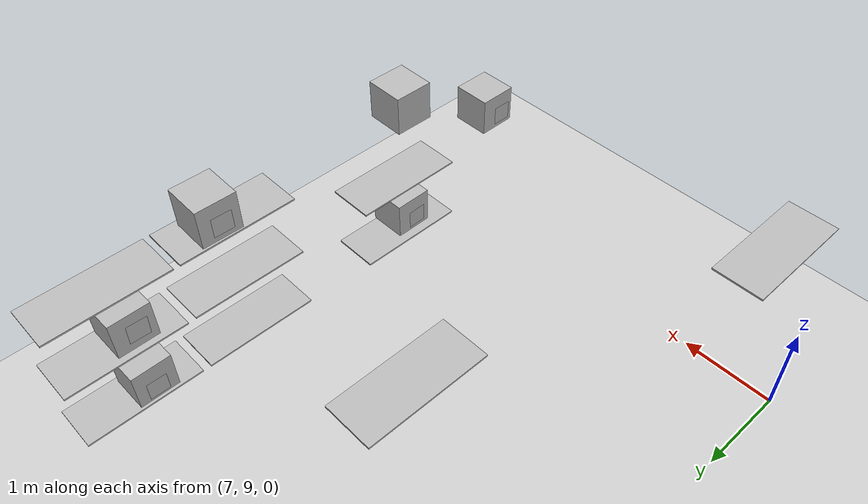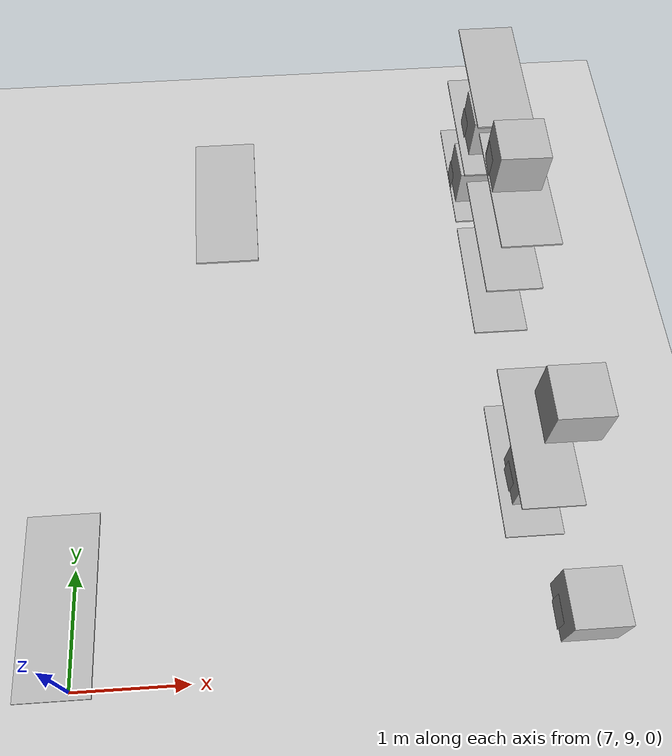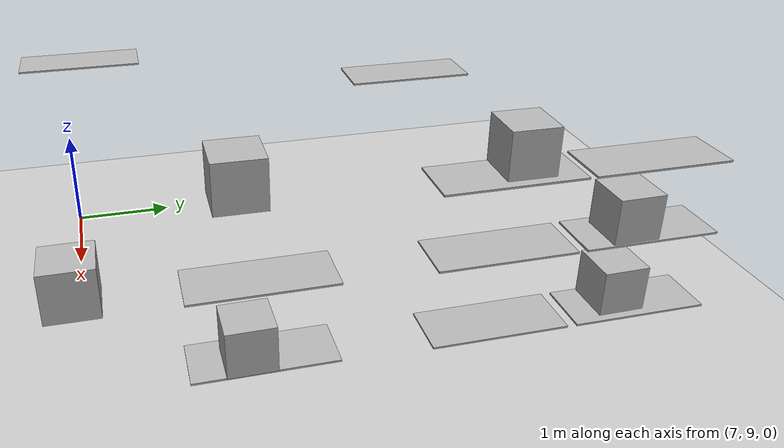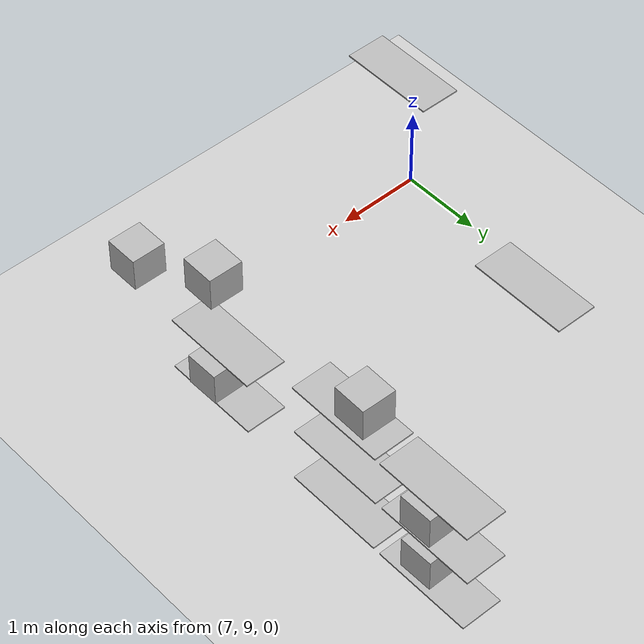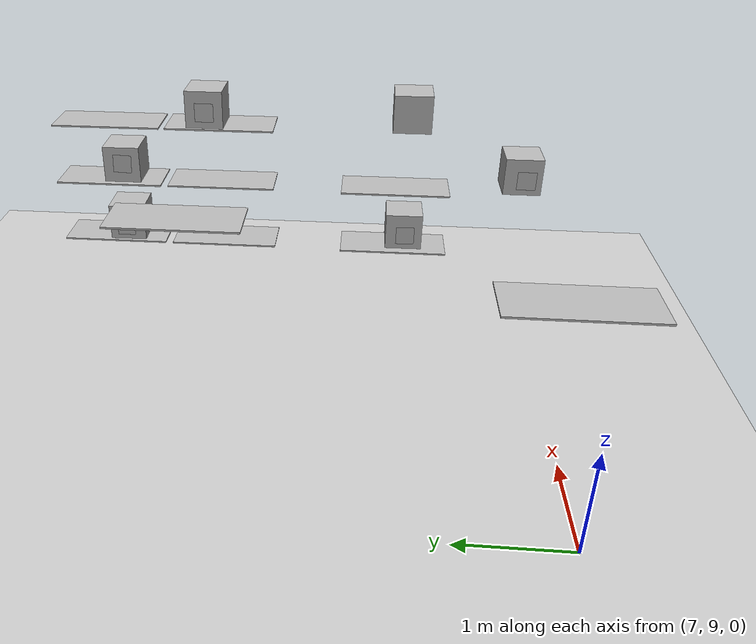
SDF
<sdf version="1.6">
 <world name="default">
  <model name="ground_plane">
   <static>1</static>
   <link name="link">
    <collision name="collision">
     <geometry><plane><normal>0 0 1</normal><size>300 300</size></plane></geometry>
     <surface>
      <contact><collide_bitmask>65535</collide_bitmask></contact>
      <friction><ode><mu>100</mu><mu2>50</mu2></ode></friction>
     </surface>
    </collision>
    <visual name="visual">
     <geometry><plane><normal>0 0 1</normal><size>100 100</size></plane></geometry>
     <material>
      <script><uri>file://media/materials/scripts/gazebo.material</uri><name>Gazebo/Grey</name></script>
     </material>
    </visual>
   </link>
  </model>
  <model name="Plano15">
   <link name="link">
    <gravity>0</gravity>
    <pose>0.092941 -0.00902 1.95167 0 -0 0</pose>
    <inertial>
     <mass>1e-06</mass>
     <inertia><ixx>0.00058</ixx><ixy>0</ixy><ixz>0</ixz><iyy>0.00058</iyy><iyz>0</iyz><izz>0.00019</izz></inertia>
    </inertial>
    <visual name="visual">
     <geometry><box><size>0.2 1e-06 0.2</size></box></geometry>
     <material>
      <script>
       <uri>model://Plano15/materials/scripts</uri>
       <uri>model://Plano15/materials/textures</uri>
       <name>Plano15/Diffuse</name>
      </script>
      <shader type="pixel"/>
     </material>
     <cast_shadows>0</cast_shadows>
    </visual>
    <collision name="collision">
     <geometry><box><size>0.2 1e-06 0.2</size></box></geometry>
     <surface>
      <friction>
       <ode><mu>1</mu><mu2>1</mu2><fdir1>0 0 0</fdir1><slip1>0</slip1><slip2>0</slip2></ode>
       <torsional>
        <coefficient>1</coefficient>
        <patch_radius>0</patch_radius>
        <surface_radius>0</surface_radius>
        <use_patch_radius>1</use_patch_radius>
        <ode><slip>0</slip></ode>
       </torsional>
      </friction>
      <bounce><restitution_coefficient>0</restitution_coefficient><threshold>1e+06</threshold></bounce>
      <contact>
       <collide_without_contact>0</collide_without_contact>
       <collide_without_contact_bitmask>1</collide_without_contact_bitmask>
       <collide_bitmask>1</collide_bitmask>
       <ode>
        <soft_cfm>0</soft_cfm>
        <soft_erp>0.2</soft_erp>
        <kp>1e+13</kp>
        <kd>1</kd>
        <max_vel>0.01</max_vel>
        <min_depth>0</min_depth>
       </ode>
       <bullet>
        <split_impulse>1</split_impulse>
        <split_impulse_penetration_threshold>-0.01</split_impulse_penetration_threshold>
        <soft_cfm>0</soft_cfm>
        <soft_erp>0.2</soft_erp>
        <kp>1e+13</kp>
        <kd>1</kd>
       </bullet>
      </contact>
     </surface>
    </collision>
   </link>
   <static>0</static>
   <pose>10.6606 12.5838 0.25794 0 0 -1.60068</pose>
  </model>
  <model name="Plano17">
   <link name="link">
    <gravity>0</gravity>
    <pose>0.529394 0.033885 0.692928 -0 0.041367 0.025601</pose>
    <inertial>
     <mass>1e-06</mass>
     <inertia><ixx>0.00058</ixx><ixy>0</ixy><ixz>0</ixz><iyy>0.00058</iyy><iyz>0</iyz><izz>0.00019</izz></inertia>
    </inertial>
    <visual name="visual">
     <geometry><box><size>0.2 1e-06 0.2</size></box></geometry>
     <material>
      <script>
       <uri>model://Plano17/materials/scripts</uri>
       <uri>model://Plano17/materials/textures</uri>
       <name>Plano17/Diffuse</name>
      </script>
      <shader type="pixel"/>
     </material>
     <cast_shadows>0</cast_shadows>
    </visual>
    <collision name="collision">
     <geometry><box><size>0.2 1e-06 0.2</size></box></geometry>
     <surface>
      <friction>
       <ode><mu>1</mu><mu2>1</mu2><fdir1>0 0 0</fdir1><slip1>0</slip1><slip2>0</slip2></ode>
       <torsional>
        <coefficient>1</coefficient>
        <patch_radius>0</patch_radius>
        <surface_radius>0</surface_radius>
        <use_patch_radius>1</use_patch_radius>
        <ode><slip>0</slip></ode>
       </torsional>
      </friction>
      <bounce><restitution_coefficient>0</restitution_coefficient><threshold>1e+06</threshold></bounce>
      <contact>
       <collide_without_contact>0</collide_without_contact>
       <collide_without_contact_bitmask>1</collide_without_contact_bitmask>
       <collide_bitmask>1</collide_bitmask>
       <ode>
        <soft_cfm>0</soft_cfm>
        <soft_erp>0.2</soft_erp>
        <kp>1e+13</kp>
        <kd>1</kd>
        <max_vel>0.01</max_vel>
        <min_depth>0</min_depth>
       </ode>
       <bullet>
        <split_impulse>1</split_impulse>
        <split_impulse_penetration_threshold>-0.01</split_impulse_penetration_threshold>
        <soft_cfm>0</soft_cfm>
        <soft_erp>0.2</soft_erp>
        <kp>1e+13</kp>
        <kd>1</kd>
       </bullet>
      </contact>
     </surface>
    </collision>
   </link>
   <static>0</static>
   <pose>10.6508 13.9613 0.903512 0 0 -1.5876</pose>
  </model>
  <model name="Plano14">
   <link name="link">
    <gravity>0</gravity>
    <pose>-0.817096 -0.102693 -0.058439 0.003356 0.001825 0.044055</pose>
    <inertial>
     <mass>1e-06</mass>
     <inertia><ixx>0.00058</ixx><ixy>0</ixy><ixz>0</ixz><iyy>0.00058</iyy><iyz>0</iyz><izz>0.00019</izz></inertia>
    </inertial>
    <visual name="visual">
     <geometry><box><size>0.2 1e-06 0.2</size></box></geometry>
     <material>
      <script>
       <uri>model://Plano14/materials/scripts</uri>
       <uri>model://Plano14/materials/textures</uri>
       <name>Plano14/Diffuse</name>
      </script>
      <shader type="pixel"/>
     </material>
     <cast_shadows>0</cast_shadows>
    </visual>
    <collision name="collision">
     <geometry><box><size>0.2 1e-06 0.2</size></box></geometry>
     <surface>
      <friction>
       <ode><mu>1</mu><mu2>1</mu2><fdir1>0 0 0</fdir1><slip1>0</slip1><slip2>0</slip2></ode>
       <torsional>
        <coefficient>1</coefficient>
        <patch_radius>0</patch_radius>
        <surface_radius>0</surface_radius>
        <use_patch_radius>1</use_patch_radius>
        <ode><slip>0</slip></ode>
       </torsional>
      </friction>
      <bounce><restitution_coefficient>0</restitution_coefficient><threshold>1e+06</threshold></bounce>
      <contact>
       <collide_without_contact>0</collide_without_contact>
       <collide_without_contact_bitmask>1</collide_without_contact_bitmask>
       <collide_bitmask>1</collide_bitmask>
       <ode>
        <soft_cfm>0</soft_cfm>
        <soft_erp>0.2</soft_erp>
        <kp>1e+13</kp>
        <kd>1</kd>
        <max_vel>0.01</max_vel>
        <min_depth>0</min_depth>
       </ode>
       <bullet>
        <split_impulse>1</split_impulse>
        <split_impulse_penetration_threshold>-0.01</split_impulse_penetration_threshold>
        <soft_cfm>0</soft_cfm>
        <soft_erp>0.2</soft_erp>
        <kp>1e+13</kp>
        <kd>1</kd>
       </bullet>
      </contact>
     </surface>
    </collision>
   </link>
   <static>0</static>
   <pose>10.7078 12.6284 0.90675 0 0 -1.62851</pose>
  </model>
  <model name="Plano29">
   <link name="link">
    <gravity>0</gravity>
    <pose>1.04341 -0.05608 -0.017058 0 -0 0</pose>
    <inertial>
     <mass>1e-06</mass>
     <inertia><ixx>0.00058</ixx><ixy>0</ixy><ixz>0</ixz><iyy>0.00058</iyy><iyz>0</iyz><izz>0.00019</izz></inertia>
    </inertial>
    <visual name="visual">
     <geometry><box><size>0.2 1e-06 0.2</size></box></geometry>
     <material>
      <script>
       <uri>model://Plano29/materials/scripts</uri>
       <uri>model://Plano29/materials/textures</uri>
       <name>Plano29/Diffuse</name>
      </script>
      <shader type="pixel"/>
     </material>
     <cast_shadows>0</cast_shadows>
    </visual>
    <collision name="collision">
     <geometry><box><size>0.2 1e-06 0.2</size></box></geometry>
     <surface>
      <friction>
       <ode><mu>1</mu><mu2>1</mu2><fdir1>0 0 0</fdir1><slip1>0</slip1><slip2>0</slip2></ode>
       <torsional>
        <coefficient>1</coefficient>
        <patch_radius>0</patch_radius>
        <surface_radius>0</surface_radius>
        <use_patch_radius>1</use_patch_radius>
        <ode><slip>0</slip></ode>
       </torsional>
      </friction>
      <bounce><restitution_coefficient>0</restitution_coefficient><threshold>1e+06</threshold></bounce>
      <contact>
       <collide_without_contact>0</collide_without_contact>
       <collide_without_contact_bitmask>1</collide_without_contact_bitmask>
       <collide_bitmask>1</collide_bitmask>
       <ode>
        <soft_cfm>0</soft_cfm>
        <soft_erp>0.2</soft_erp>
        <kp>1e+13</kp>
        <kd>1</kd>
        <max_vel>0.01</max_vel>
        <min_depth>0</min_depth>
       </ode>
       <bullet>
        <split_impulse>1</split_impulse>
        <split_impulse_penetration_threshold>-0.01</split_impulse_penetration_threshold>
        <soft_cfm>0</soft_cfm>
        <soft_erp>0.2</soft_erp>
        <kp>1e+13</kp>
        <kd>1</kd>
       </bullet>
      </contact>
     </surface>
    </collision>
   </link>
   <static>0</static>
   <pose>10.7522 10.1107 1.5598 0 0 -1.57894</pose>
  </model>
  <model name="Plano27">
   <link name="link">
    <gravity>0</gravity>
    <pose>0.469171 -0.023188 -0.057385 0 -0 0.032924</pose>
    <inertial>
     <mass>1e-06</mass>
     <inertia><ixx>0.00058</ixx><ixy>0</ixy><ixz>0</ixz><iyy>0.00058</iyy><iyz>0</iyz><izz>0.00019</izz></inertia>
    </inertial>
    <visual name="visual">
     <geometry><box><size>0.2 1e-06 0.2</size></box></geometry>
     <material>
      <script>
       <uri>model://Plano27/materials/scripts</uri>
       <uri>model://Plano27/materials/textures</uri>
       <name>Plano27/Diffuse</name>
      </script>
      <shader type="pixel"/>
     </material>
     <cast_shadows>0</cast_shadows>
    </visual>
    <collision name="collision">
     <geometry><box><size>0.2 1e-06 0.2</size></box></geometry>
     <surface>
      <friction>
       <ode><mu>1</mu><mu2>1</mu2><fdir1>0 0 0</fdir1><slip1>0</slip1><slip2>0</slip2></ode>
       <torsional>
        <coefficient>1</coefficient>
        <patch_radius>0</patch_radius>
        <surface_radius>0</surface_radius>
        <use_patch_radius>1</use_patch_radius>
        <ode><slip>0</slip></ode>
       </torsional>
      </friction>
      <bounce><restitution_coefficient>0</restitution_coefficient><threshold>1e+06</threshold></bounce>
      <contact>
       <collide_without_contact>0</collide_without_contact>
       <collide_without_contact_bitmask>1</collide_without_contact_bitmask>
       <collide_bitmask>1</collide_bitmask>
       <ode>
        <soft_cfm>0</soft_cfm>
        <soft_erp>0.2</soft_erp>
        <kp>1e+13</kp>
        <kd>1</kd>
        <max_vel>0.01</max_vel>
        <min_depth>0</min_depth>
       </ode>
       <bullet>
        <split_impulse>1</split_impulse>
        <split_impulse_penetration_threshold>-0.01</split_impulse_penetration_threshold>
        <soft_cfm>0</soft_cfm>
        <soft_erp>0.2</soft_erp>
        <kp>1e+13</kp>
        <kd>1</kd>
       </bullet>
      </contact>
     </surface>
    </collision>
   </link>
   <static>0</static>
   <pose>10.7156 10.7789 0.90002 0 0 -1.57306</pose>
  </model>
  <model name="unit_box_clone_3">
   <link name="link">
    <inertial>
     <mass>0.00922354</mass>
     <inertia>
      <ixx>0.00104733</ixx>
      <ixy>0</ixy>
      <ixz>0</ixz>
      <iyy>0.000178965</iyy>
      <iyz>0</iyz>
      <izz>0.00122588</izz>
     </inertia>
    </inertial>
    <pose>1.0387 1.15619 1.50314 -0 -0 -0</pose>
    <visual name="visual">
     <geometry><box><size>0.482252 1.16718 0.016436</size></box></geometry>
     <material>
      <script>
       <uri>model://unit_box/materials/scripts</uri>
       <uri>model://unit_box/materials/textures</uri>
       <name>shelveMat/Diffuse</name>
      </script>
      <shader type="pixel"/>
     </material>
    </visual>
    <collision name="collision">
     <geometry><box><size>0.482252 1.16718 0.016436</size></box></geometry>
     <surface>
      <friction>
       <ode><mu>1</mu><mu2>1</mu2><fdir1>0 0 0</fdir1><slip1>0</slip1><slip2>0</slip2></ode>
       <torsional>
        <coefficient>1</coefficient>
        <patch_radius>0</patch_radius>
        <surface_radius>0</surface_radius>
        <use_patch_radius>1</use_patch_radius>
        <ode><slip>0</slip></ode>
       </torsional>
      </friction>
      <bounce><restitution_coefficient>0</restitution_coefficient><threshold>1e+06</threshold></bounce>
      <contact>
       <collide_without_contact>0</collide_without_contact>
       <collide_without_contact_bitmask>1</collide_without_contact_bitmask>
       <collide_bitmask>1</collide_bitmask>
       <ode>
        <soft_cfm>0</soft_cfm>
        <soft_erp>0.2</soft_erp>
        <kp>1e+13</kp>
        <kd>1</kd>
        <max_vel>0.01</max_vel>
        <min_depth>0</min_depth>
       </ode>
       <bullet>
        <split_impulse>1</split_impulse>
        <split_impulse_penetration_threshold>-0.01</split_impulse_penetration_threshold>
        <soft_cfm>0</soft_cfm>
        <soft_erp>0.2</soft_erp>
        <kp>1e+13</kp>
        <kd>1</kd>
       </bullet>
      </contact>
     </surface>
    </collision>
   </link>
   <static>1</static>
   <pose>9.87058 12.426 0.509169 0 -1e-06 -0.002445</pose>
  </model>
  <model name="unit_box_clone_4">
   <link name="link">
    <inertial>
     <mass>0.00922354</mass>
     <inertia>
      <ixx>0.00104733</ixx>
      <ixy>0</ixy>
      <ixz>0</ixz>
      <iyy>0.000178965</iyy>
      <iyz>0</iyz>
      <izz>0.00122588</izz>
     </inertia>
    </inertial>
    <pose>1.0387 1.15619 1.50314 -0 -0 -0</pose>
    <visual name="visual">
     <geometry><box><size>0.482252 1.16718 0.016436</size></box></geometry>
     <material>
      <script>
       <uri>model://unit_box/materials/scripts</uri>
       <uri>model://unit_box/materials/textures</uri>
       <name>shelveMat/Diffuse</name>
      </script>
      <shader type="pixel"/>
     </material>
    </visual>
    <collision name="collision">
     <geometry><box><size>0.482252 1.16718 0.016436</size></box></geometry>
     <surface>
      <friction>
       <ode><mu>1</mu><mu2>1</mu2><fdir1>0 0 0</fdir1><slip1>0</slip1><slip2>0</slip2></ode>
       <torsional>
        <coefficient>1</coefficient>
        <patch_radius>0</patch_radius>
        <surface_radius>0</surface_radius>
        <use_patch_radius>1</use_patch_radius>
        <ode><slip>0</slip></ode>
       </torsional>
      </friction>
      <bounce><restitution_coefficient>0</restitution_coefficient><threshold>1e+06</threshold></bounce>
      <contact>
       <collide_without_contact>0</collide_without_contact>
       <collide_without_contact_bitmask>1</collide_without_contact_bitmask>
       <collide_bitmask>1</collide_bitmask>
       <ode>
        <soft_cfm>0</soft_cfm>
        <soft_erp>0.2</soft_erp>
        <kp>1e+13</kp>
        <kd>1</kd>
        <max_vel>0.01</max_vel>
        <min_depth>0</min_depth>
       </ode>
       <bullet>
        <split_impulse>1</split_impulse>
        <split_impulse_penetration_threshold>-0.01</split_impulse_penetration_threshold>
        <soft_cfm>0</soft_cfm>
        <soft_erp>0.2</soft_erp>
        <kp>1e+13</kp>
        <kd>1</kd>
       </bullet>
      </contact>
     </surface>
    </collision>
   </link>
   <static>1</static>
   <pose>7.48204 11.2062 0.509169 0 -1e-06 -0.002445</pose>
  </model>
  <model name="unit_box_clone_10_clone_1">
   <link name="link">
    <inertial>
     <mass>0.00922354</mass>
     <inertia>
      <ixx>0.00104733</ixx>
      <ixy>0</ixy>
      <ixz>0</ixz>
      <iyy>0.000178965</iyy>
      <iyz>0</iyz>
      <izz>0.00122588</izz>
     </inertia>
    </inertial>
    <pose>2.16821 0.157655 0.848426 -0 -0 -0</pose>
    <visual name="visual">
     <geometry><box><size>0.482252 1.16718 0.016436</size></box></geometry>
     <material>
      <script>
       <uri>model://unit_box/materials/scripts</uri>
       <uri>model://unit_box/materials/textures</uri>
       <name>shelveMat/Diffuse</name>
      </script>
      <shader type="pixel"/>
     </material>
    </visual>
    <collision name="collision">
     <geometry><box><size>0.482252 1.16718 0.016436</size></box></geometry>
     <surface>
      <friction>
       <ode><mu>1</mu><mu2>1</mu2><fdir1>0 0 0</fdir1><slip1>0</slip1><slip2>0</slip2></ode>
       <torsional>
        <coefficient>1</coefficient>
        <patch_radius>0</patch_radius>
        <surface_radius>0</surface_radius>
        <use_patch_radius>1</use_patch_radius>
        <ode><slip>0</slip></ode>
       </torsional>
      </friction>
      <bounce><restitution_coefficient>0</restitution_coefficient><threshold>1e+06</threshold></bounce>
      <contact>
       <collide_without_contact>0</collide_without_contact>
       <collide_without_contact_bitmask>1</collide_without_contact_bitmask>
       <collide_bitmask>1</collide_bitmask>
       <ode>
        <soft_cfm>0</soft_cfm>
        <soft_erp>0.2</soft_erp>
        <kp>1e+13</kp>
        <kd>1</kd>
        <max_vel>0.01</max_vel>
        <min_depth>0</min_depth>
       </ode>
       <bullet>
        <split_impulse>1</split_impulse>
        <split_impulse_penetration_threshold>-0.01</split_impulse_penetration_threshold>
        <soft_cfm>0</soft_cfm>
        <soft_erp>0.2</soft_erp>
        <kp>1e+13</kp>
        <kd>1</kd>
       </bullet>
      </contact>
     </surface>
    </collision>
   </link>
   <static>1</static>
   <pose>8.69361 10.2933 0.509172 0 -1e-06 -0.002445</pose>
  </model>
  <model name="unit_box_clone_10_clone_2">
   <link name="link">
    <inertial>
     <mass>0.00922354</mass>
     <inertia>
      <ixx>0.00104733</ixx>
      <ixy>0</ixy>
      <ixz>0</ixz>
      <iyy>0.000178965</iyy>
      <iyz>0</iyz>
      <izz>0.00122588</izz>
     </inertia>
    </inertial>
    <pose>2.16821 0.157655 0.848426 -0 -0 -0</pose>
    <visual name="visual">
     <geometry><box><size>0.482252 1.16718 0.016436</size></box></geometry>
     <material>
      <script>
       <uri>model://unit_box/materials/scripts</uri>
       <uri>model://unit_box/materials/textures</uri>
       <name>shelveMat/Diffuse</name>
      </script>
      <shader type="pixel"/>
     </material>
    </visual>
    <collision name="collision">
     <geometry><box><size>0.482252 1.16718 0.016436</size></box></geometry>
     <surface>
      <friction>
       <ode><mu>1</mu><mu2>1</mu2><fdir1>0 0 0</fdir1><slip1>0</slip1><slip2>0</slip2></ode>
       <torsional>
        <coefficient>1</coefficient>
        <patch_radius>0</patch_radius>
        <surface_radius>0</surface_radius>
        <use_patch_radius>1</use_patch_radius>
        <ode><slip>0</slip></ode>
       </torsional>
      </friction>
      <bounce><restitution_coefficient>0</restitution_coefficient><threshold>1e+06</threshold></bounce>
      <contact>
       <collide_without_contact>0</collide_without_contact>
       <collide_without_contact_bitmask>1</collide_without_contact_bitmask>
       <collide_bitmask>1</collide_bitmask>
       <ode>
        <soft_cfm>0</soft_cfm>
        <soft_erp>0.2</soft_erp>
        <kp>1e+13</kp>
        <kd>1</kd>
        <max_vel>0.01</max_vel>
        <min_depth>0</min_depth>
       </ode>
       <bullet>
        <split_impulse>1</split_impulse>
        <split_impulse_penetration_threshold>-0.01</split_impulse_penetration_threshold>
        <soft_cfm>0</soft_cfm>
        <soft_erp>0.2</soft_erp>
        <kp>1e+13</kp>
        <kd>1</kd>
       </bullet>
      </contact>
     </surface>
    </collision>
   </link>
   <static>1</static>
   <pose>8.73071 12.2024 0.509172 0 -1e-06 -0.002445</pose>
  </model>
  <model name="unit_box_clone_3_clone">
   <link name="link">
    <inertial>
     <mass>0.00922354</mass>
     <inertia>
      <ixx>0.00104733</ixx>
      <ixy>0</ixy>
      <ixz>0</ixz>
      <iyy>0.000178965</iyy>
      <iyz>0</iyz>
      <izz>0.00122588</izz>
     </inertia>
    </inertial>
    <pose>1.0387 1.15619 1.50314 -0 -0 -0</pose>
    <visual name="visual">
     <geometry><box><size>0.482252 1.16718 0.016436</size></box></geometry>
     <material>
      <script>
       <uri>model://unit_box/materials/scripts</uri>
       <uri>model://unit_box/materials/textures</uri>
       <name>shelveMat/Diffuse</name>
      </script>
      <shader type="pixel"/>
     </material>
    </visual>
    <collision name="collision">
     <geometry><box><size>0.482252 1.16718 0.016436</size></box></geometry>
     <surface>
      <friction>
       <ode><mu>1</mu><mu2>1</mu2><fdir1>0 0 0</fdir1><slip1>0</slip1><slip2>0</slip2></ode>
       <torsional>
        <coefficient>1</coefficient>
        <patch_radius>0</patch_radius>
        <surface_radius>0</surface_radius>
        <use_patch_radius>1</use_patch_radius>
        <ode><slip>0</slip></ode>
       </torsional>
      </friction>
      <bounce><restitution_coefficient>0</restitution_coefficient><threshold>1e+06</threshold></bounce>
      <contact>
       <collide_without_contact>0</collide_without_contact>
       <collide_without_contact_bitmask>1</collide_without_contact_bitmask>
       <collide_bitmask>1</collide_bitmask>
       <ode>
        <soft_cfm>0</soft_cfm>
        <soft_erp>0.2</soft_erp>
        <kp>1e+13</kp>
        <kd>1</kd>
        <max_vel>0.01</max_vel>
        <min_depth>0</min_depth>
       </ode>
       <bullet>
        <split_impulse>1</split_impulse>
        <split_impulse_penetration_threshold>-0.01</split_impulse_penetration_threshold>
        <soft_cfm>0</soft_cfm>
        <soft_erp>0.2</soft_erp>
        <kp>1e+13</kp>
        <kd>1</kd>
       </bullet>
      </contact>
     </surface>
    </collision>
   </link>
   <static>1</static>
   <pose>9.86678 11.1965 0.509169 0 -1e-06 -0.002445</pose>
  </model>
  <model name="CuboQR17">
   <link name="link">
    <pose>1.43171 2.05866 0.02147 1e-06 0.159589 -0</pose>
    <inertial>
     <mass>0.39</mass>
     <inertia><ixx>0.00058</ixx><ixy>0</ixy><ixz>0</ixz><iyy>0.00058</iyy><iyz>0</iyz><izz>0.00019</izz></inertia>
    </inertial>
    <visual name="visual">
     <geometry><box><size>0.4 0.4 0.4</size></box></geometry>
     <material>
      <script>
       <uri>model://Caja/materials/scripts</uri>
       <uri>model://Caja/materials/textures</uri>
       <name>Caja/Diffuse</name>
      </script>
      <shader type="pixel"/>
     </material>
    </visual>
    <collision name="collision">
     <geometry><box><size>0.4 0.4 0.4</size></box></geometry>
     <surface>
      <friction>
       <ode><mu>1</mu><mu2>1</mu2><fdir1>0 0 0</fdir1><slip1>0</slip1><slip2>0</slip2></ode>
       <torsional>
        <coefficient>1</coefficient>
        <patch_radius>0</patch_radius>
        <surface_radius>0</surface_radius>
        <use_patch_radius>1</use_patch_radius>
        <ode><slip>0</slip></ode>
       </torsional>
      </friction>
      <bounce><restitution_coefficient>0</restitution_coefficient><threshold>1e+06</threshold></bounce>
      <contact>
       <collide_without_contact>0</collide_without_contact>
       <collide_without_contact_bitmask>1</collide_without_contact_bitmask>
       <collide_bitmask>1</collide_bitmask>
       <ode>
        <soft_cfm>0</soft_cfm>
        <soft_erp>0.2</soft_erp>
        <kp>1e+13</kp>
        <kd>1</kd>
        <max_vel>0.01</max_vel>
        <min_depth>0</min_depth>
       </ode>
       <bullet>
        <split_impulse>1</split_impulse>
        <split_impulse_penetration_threshold>-0.01</split_impulse_penetration_threshold>
        <soft_cfm>0</soft_cfm>
        <soft_erp>0.2</soft_erp>
        <kp>1e+13</kp>
        <kd>1</kd>
       </bullet>
      </contact>
     </surface>
    </collision>
   </link>
   <static>1</static>
   <pose>11.1525 13.9015 0.16934 1.5708 1.4e-05 -1.7472</pose>
  </model>
  <model name="unit_box_clone_10_clone_2_clone">
   <link name="link">
    <inertial>
     <mass>0.00922354</mass>
     <inertia>
      <ixx>0.00104733</ixx>
      <ixy>0</ixy>
      <ixz>0</ixz>
      <iyy>0.000178965</iyy>
      <iyz>0</iyz>
      <izz>0.00122588</izz>
     </inertia>
    </inertial>
    <pose>2.16821 0.157655 0.848426 -0 -0 -0</pose>
    <visual name="visual">
     <geometry><box><size>0.482252 1.16718 0.016436</size></box></geometry>
     <material>
      <script>
       <uri>model://unit_box/materials/scripts</uri>
       <uri>model://unit_box/materials/textures</uri>
       <name>shelveMat/Diffuse</name>
      </script>
      <shader type="pixel"/>
     </material>
    </visual>
    <collision name="collision">
     <geometry><box><size>0.482252 1.16718 0.016436</size></box></geometry>
     <surface>
      <friction>
       <ode><mu>1</mu><mu2>1</mu2><fdir1>0 0 0</fdir1><slip1>0</slip1><slip2>0</slip2></ode>
       <torsional>
        <coefficient>1</coefficient>
        <patch_radius>0</patch_radius>
        <surface_radius>0</surface_radius>
        <use_patch_radius>1</use_patch_radius>
        <ode><slip>0</slip></ode>
       </torsional>
      </friction>
      <bounce><restitution_coefficient>0</restitution_coefficient><threshold>1e+06</threshold></bounce>
      <contact>
       <collide_without_contact>0</collide_without_contact>
       <collide_without_contact_bitmask>1</collide_without_contact_bitmask>
       <collide_bitmask>1</collide_bitmask>
       <ode>
        <soft_cfm>0</soft_cfm>
        <soft_erp>0.2</soft_erp>
        <kp>1e+13</kp>
        <kd>1</kd>
        <max_vel>0.01</max_vel>
        <min_depth>0</min_depth>
       </ode>
       <bullet>
        <split_impulse>1</split_impulse>
        <split_impulse_penetration_threshold>-0.01</split_impulse_penetration_threshold>
        <soft_cfm>0</soft_cfm>
        <soft_erp>0.2</soft_erp>
        <kp>1e+13</kp>
        <kd>1</kd>
       </bullet>
      </contact>
     </surface>
    </collision>
   </link>
   <static>1</static>
   <pose>8.72771 13.4487 0.509172 0 -1e-06 -0.002445</pose>
  </model>
  <model name="CuboQR14">
   <link name="link">
    <pose>0.00391 0.820437 1.62046 0.003858 -4.2e-05 0.048672</pose>
    <inertial>
     <mass>0.39</mass>
     <inertia><ixx>0.00058</ixx><ixy>0</ixy><ixz>0</ixz><iyy>0.00058</iyy><iyz>0</iyz><izz>0.00019</izz></inertia>
    </inertial>
    <visual name="visual">
     <geometry><box><size>0.4 0.4 0.4</size></box></geometry>
     <material>
      <script>
       <uri>model://Caja/materials/scripts</uri>
       <uri>model://Caja/materials/textures</uri>
       <name>Caja/Diffuse</name>
      </script>
      <shader type="pixel"/>
     </material>
    </visual>
    <collision name="collision">
     <geometry><box><size>0.4 0.4 0.4</size></box></geometry>
     <surface>
      <friction>
       <ode><mu>1</mu><mu2>1</mu2><fdir1>0 0 0</fdir1><slip1>0</slip1><slip2>0</slip2></ode>
       <torsional>
        <coefficient>1</coefficient>
        <patch_radius>0</patch_radius>
        <surface_radius>0</surface_radius>
        <use_patch_radius>1</use_patch_radius>
        <ode><slip>0</slip></ode>
       </torsional>
      </friction>
      <bounce><restitution_coefficient>0</restitution_coefficient><threshold>1e+06</threshold></bounce>
      <contact>
       <collide_without_contact>0</collide_without_contact>
       <collide_without_contact_bitmask>1</collide_without_contact_bitmask>
       <collide_bitmask>1</collide_bitmask>
       <ode>
        <soft_cfm>0</soft_cfm>
        <soft_erp>0.2</soft_erp>
        <kp>1e+13</kp>
        <kd>1</kd>
        <max_vel>0.01</max_vel>
        <min_depth>0</min_depth>
       </ode>
       <bullet>
        <split_impulse>1</split_impulse>
        <split_impulse_penetration_threshold>-0.01</split_impulse_penetration_threshold>
        <soft_cfm>0</soft_cfm>
        <soft_erp>0.2</soft_erp>
        <kp>1e+13</kp>
        <kd>1</kd>
       </bullet>
      </contact>
     </surface>
    </collision>
   </link>
   <static>1</static>
   <pose>10.8847 12.6281 -0.053183 -0.003858 -0.000151 -0.041812</pose>
  </model>
  <model name="unit_box_clone_10_clone_clone_clone_clone_clone_0">
   <link name="link">
    <inertial>
     <mass>0.00922354</mass>
     <inertia>
      <ixx>0.00104733</ixx>
      <ixy>0</ixy>
      <ixz>0</ixz>
      <iyy>0.000178965</iyy>
      <iyz>0</iyz>
      <izz>0.00122588</izz>
     </inertia>
    </inertial>
    <pose>0.807225 -0.395541 0.148735 -0 -0 -0</pose>
    <visual name="visual">
     <geometry><box><size>0.482252 1.16718 0.016436</size></box></geometry>
     <material>
      <script>
       <uri>model://unit_box/materials/scripts</uri>
       <uri>model://unit_box/materials/textures</uri>
       <name>shelveMat/Diffuse</name>
      </script>
      <shader type="pixel"/>
     </material>
    </visual>
    <collision name="collision">
     <geometry><box><size>0.482252 1.16718 0.016436</size></box></geometry>
     <surface>
      <friction>
       <ode><mu>1</mu><mu2>1</mu2><fdir1>0 0 0</fdir1><slip1>0</slip1><slip2>0</slip2></ode>
       <torsional>
        <coefficient>1</coefficient>
        <patch_radius>0</patch_radius>
        <surface_radius>0</surface_radius>
        <use_patch_radius>1</use_patch_radius>
        <ode><slip>0</slip></ode>
       </torsional>
      </friction>
      <bounce><restitution_coefficient>0</restitution_coefficient><threshold>1e+06</threshold></bounce>
      <contact>
       <collide_without_contact>0</collide_without_contact>
       <collide_without_contact_bitmask>1</collide_without_contact_bitmask>
       <collide_bitmask>1</collide_bitmask>
       <ode>
        <soft_cfm>0</soft_cfm>
        <soft_erp>0.2</soft_erp>
        <kp>1e+13</kp>
        <kd>1</kd>
        <max_vel>0.01</max_vel>
        <min_depth>0</min_depth>
       </ode>
       <bullet>
        <split_impulse>1</split_impulse>
        <split_impulse_penetration_threshold>-0.01</split_impulse_penetration_threshold>
        <soft_cfm>0</soft_cfm>
        <soft_erp>0.2</soft_erp>
        <kp>1e+13</kp>
        <kd>1</kd>
       </bullet>
      </contact>
     </surface>
    </collision>
   </link>
   <static>1</static>
   <pose>10.0998 12.7434 0.509169 0 -1e-06 -0.002445</pose>
  </model>
  <model name="unit_box_clone_10_clone_clone_clone_clone_clone_0_clone">
   <link name="link">
    <inertial>
     <mass>0.00922354</mass>
     <inertia>
      <ixx>0.00104733</ixx>
      <ixy>0</ixy>
      <ixz>0</ixz>
      <iyy>0.000178965</iyy>
      <iyz>0</iyz>
      <izz>0.00122588</izz>
     </inertia>
    </inertial>
    <pose>0.807225 -0.395541 0.148735 -0 -0 -0</pose>
    <visual name="visual">
     <geometry><box><size>0.482252 1.16718 0.016436</size></box></geometry>
     <material>
      <script>
       <uri>model://unit_box/materials/scripts</uri>
       <uri>model://unit_box/materials/textures</uri>
       <name>shelveMat/Diffuse</name>
      </script>
      <shader type="pixel"/>
     </material>
    </visual>
    <collision name="collision">
     <geometry><box><size>0.482252 1.16718 0.016436</size></box></geometry>
     <surface>
      <friction>
       <ode><mu>1</mu><mu2>1</mu2><fdir1>0 0 0</fdir1><slip1>0</slip1><slip2>0</slip2></ode>
       <torsional>
        <coefficient>1</coefficient>
        <patch_radius>0</patch_radius>
        <surface_radius>0</surface_radius>
        <use_patch_radius>1</use_patch_radius>
        <ode><slip>0</slip></ode>
       </torsional>
      </friction>
      <bounce><restitution_coefficient>0</restitution_coefficient><threshold>1e+06</threshold></bounce>
      <contact>
       <collide_without_contact>0</collide_without_contact>
       <collide_without_contact_bitmask>1</collide_without_contact_bitmask>
       <collide_bitmask>1</collide_bitmask>
       <ode>
        <soft_cfm>0</soft_cfm>
        <soft_erp>0.2</soft_erp>
        <kp>1e+13</kp>
        <kd>1</kd>
        <max_vel>0.01</max_vel>
        <min_depth>0</min_depth>
       </ode>
       <bullet>
        <split_impulse>1</split_impulse>
        <split_impulse_penetration_threshold>-0.01</split_impulse_penetration_threshold>
        <soft_cfm>0</soft_cfm>
        <soft_erp>0.2</soft_erp>
        <kp>1e+13</kp>
        <kd>1</kd>
       </bullet>
      </contact>
     </surface>
    </collision>
   </link>
   <static>1</static>
   <pose>10.1047 13.995 0.509169 0 -1e-06 -0.002445</pose>
  </model>
  <model name="CuboQR15">
   <link name="link">
    <pose>0.015491 0.864269 0.937836 0 -0 0.05003</pose>
    <inertial>
     <mass>0.39</mass>
     <inertia><ixx>0.00058</ixx><ixy>0</ixy><ixz>0</ixz><iyy>0.00058</iyy><iyz>0</iyz><izz>0.00019</izz></inertia>
    </inertial>
    <visual name="visual">
     <geometry><box><size>0.4 0.4 0.4</size></box></geometry>
     <material>
      <script>
       <uri>model://Caja/materials/scripts</uri>
       <uri>model://Caja/materials/textures</uri>
       <name>Caja/Diffuse</name>
      </script>
      <shader type="pixel"/>
     </material>
    </visual>
    <collision name="collision">
     <geometry><box><size>0.4 0.4 0.4</size></box></geometry>
     <surface>
      <friction>
       <ode><mu>1</mu><mu2>1</mu2><fdir1>0 0 0</fdir1><slip1>0</slip1><slip2>0</slip2></ode>
       <torsional>
        <coefficient>1</coefficient>
        <patch_radius>0</patch_radius>
        <surface_radius>0</surface_radius>
        <use_patch_radius>1</use_patch_radius>
        <ode><slip>0</slip></ode>
       </torsional>
      </friction>
      <bounce><restitution_coefficient>0</restitution_coefficient><threshold>1e+06</threshold></bounce>
      <contact>
       <collide_without_contact>0</collide_without_contact>
       <collide_without_contact_bitmask>1</collide_without_contact_bitmask>
       <collide_bitmask>1</collide_bitmask>
       <ode>
        <soft_cfm>0</soft_cfm>
        <soft_erp>0.2</soft_erp>
        <kp>1e+13</kp>
        <kd>1</kd>
        <max_vel>0.01</max_vel>
        <min_depth>0</min_depth>
       </ode>
       <bullet>
        <split_impulse>1</split_impulse>
        <split_impulse_penetration_threshold>-0.01</split_impulse_penetration_threshold>
        <soft_cfm>0</soft_cfm>
        <soft_erp>0.2</soft_erp>
        <kp>1e+13</kp>
        <kd>1</kd>
       </bullet>
      </contact>
     </surface>
    </collision>
   </link>
   <static>1</static>
   <pose>10.8433 12.5845 -0.062012 6.5e-05 1e-06 -0.039159</pose>
  </model>
  <model name="unit_box_clone_10_clone_clone_clone_clone_clone_0_clone_0_clone">
   <link name="link">
    <inertial>
     <mass>0.00922354</mass>
     <inertia>
      <ixx>0.00104733</ixx>
      <ixy>0</ixy>
      <ixz>0</ixz>
      <iyy>0.000178965</iyy>
      <iyz>0</iyz>
      <izz>0.00122588</izz>
     </inertia>
    </inertial>
    <pose>0.778375 -0.419803 0.148735 -0 -0 -0</pose>
    <visual name="visual">
     <geometry><box><size>0.482252 1.16718 0.016436</size></box></geometry>
     <material>
      <script>
       <uri>model://unit_box/materials/scripts</uri>
       <uri>model://unit_box/materials/textures</uri>
       <name>shelveMat/Diffuse</name>
      </script>
      <shader type="pixel"/>
     </material>
    </visual>
    <collision name="collision">
     <geometry><box><size>0.482252 1.16718 0.016436</size></box></geometry>
     <surface>
      <friction>
       <ode><mu>1</mu><mu2>1</mu2><fdir1>0 0 0</fdir1><slip1>0</slip1><slip2>0</slip2></ode>
       <torsional>
        <coefficient>1</coefficient>
        <patch_radius>0</patch_radius>
        <surface_radius>0</surface_radius>
        <use_patch_radius>1</use_patch_radius>
        <ode><slip>0</slip></ode>
       </torsional>
      </friction>
      <bounce><restitution_coefficient>0</restitution_coefficient><threshold>1e+06</threshold></bounce>
      <contact>
       <collide_without_contact>0</collide_without_contact>
       <collide_without_contact_bitmask>1</collide_without_contact_bitmask>
       <collide_bitmask>1</collide_bitmask>
       <ode>
        <soft_cfm>0</soft_cfm>
        <soft_erp>0.2</soft_erp>
        <kp>1e+13</kp>
        <kd>1</kd>
        <max_vel>0.01</max_vel>
        <min_depth>0</min_depth>
       </ode>
       <bullet>
        <split_impulse>1</split_impulse>
        <split_impulse_penetration_threshold>-0.01</split_impulse_penetration_threshold>
        <soft_cfm>0</soft_cfm>
        <soft_erp>0.2</soft_erp>
        <kp>1e+13</kp>
        <kd>1</kd>
       </bullet>
      </contact>
     </surface>
    </collision>
   </link>
   <static>1</static>
   <pose>10.0905 10.8609 0.509169 0 -1e-06 -0.002445</pose>
  </model>
  <model name="CuboQR29">
   <link name="link">
    <pose>0.708363 0.614281 1.22447 0.741446 -0.083036 -0.038114</pose>
    <inertial>
     <mass>0.39</mass>
     <inertia><ixx>0.00058</ixx><ixy>0</ixy><ixz>0</ixz><iyy>0.00058</iyy><iyz>0</iyz><izz>0.00019</izz></inertia>
    </inertial>
    <visual name="visual">
     <geometry><box><size>0.4 0.4 0.4</size></box></geometry>
     <material>
      <script>
       <uri>model://Caja/materials/scripts</uri>
       <uri>model://Caja/materials/textures</uri>
       <name>Caja/Diffuse</name>
      </script>
      <shader type="pixel"/>
     </material>
    </visual>
    <collision name="collision">
     <geometry><box><size>0.4 0.4 0.4</size></box></geometry>
     <surface>
      <friction>
       <ode><mu>1</mu><mu2>1</mu2><fdir1>0 0 0</fdir1><slip1>0</slip1><slip2>0</slip2></ode>
       <torsional>
        <coefficient>1</coefficient>
        <patch_radius>0</patch_radius>
        <surface_radius>0</surface_radius>
        <use_patch_radius>1</use_patch_radius>
        <ode><slip>0</slip></ode>
       </torsional>
      </friction>
      <bounce><restitution_coefficient>0</restitution_coefficient><threshold>1e+06</threshold></bounce>
      <contact>
       <collide_without_contact>0</collide_without_contact>
       <collide_without_contact_bitmask>1</collide_without_contact_bitmask>
       <collide_bitmask>1</collide_bitmask>
       <ode>
        <soft_cfm>0</soft_cfm>
        <soft_erp>0.2</soft_erp>
        <kp>1e+13</kp>
        <kd>1</kd>
        <max_vel>0.01</max_vel>
        <min_depth>0</min_depth>
       </ode>
       <bullet>
        <split_impulse>1</split_impulse>
        <split_impulse_penetration_threshold>-0.01</split_impulse_penetration_threshold>
        <soft_cfm>0</soft_cfm>
        <soft_erp>0.2</soft_erp>
        <kp>1e+13</kp>
        <kd>1</kd>
       </bullet>
      </contact>
     </surface>
    </collision>
   </link>
   <static>1</static>
   <pose>9.66733 9.89389 0.083544 -0.43038 -1.477 -1.874</pose>
  </model>
  <model name="CuboQR12">
   <link name="link">
    <pose>-0.004168 -0.202878 1.66855 -0.695658 0.134257 0.18721</pose>
    <inertial>
     <mass>0.39</mass>
     <inertia><ixx>0.00058</ixx><ixy>0</ixy><ixz>0</ixz><iyy>0.00058</iyy><iyz>0</iyz><izz>0.00019</izz></inertia>
    </inertial>
    <visual name="visual">
     <geometry><box><size>0.4 0.4 0.4</size></box></geometry>
     <material>
      <script>
       <uri>model://Caja/materials/scripts</uri>
       <uri>model://Caja/materials/textures</uri>
       <name>Caja/Diffuse</name>
      </script>
      <shader type="pixel"/>
     </material>
    </visual>
    <collision name="collision">
     <geometry><box><size>0.4 0.4 0.4</size></box></geometry>
     <surface>
      <friction>
       <ode><mu>1</mu><mu2>1</mu2><fdir1>0 0 0</fdir1><slip1>0</slip1><slip2>0</slip2></ode>
       <torsional>
        <coefficient>1</coefficient>
        <patch_radius>0</patch_radius>
        <surface_radius>0</surface_radius>
        <use_patch_radius>1</use_patch_radius>
        <ode><slip>0</slip></ode>
       </torsional>
      </friction>
      <bounce><restitution_coefficient>0</restitution_coefficient><threshold>1e+06</threshold></bounce>
      <contact>
       <collide_without_contact>0</collide_without_contact>
       <collide_without_contact_bitmask>1</collide_without_contact_bitmask>
       <collide_bitmask>1</collide_bitmask>
       <ode>
        <soft_cfm>0</soft_cfm>
        <soft_erp>0.2</soft_erp>
        <kp>1e+13</kp>
        <kd>1</kd>
        <max_vel>0.01</max_vel>
        <min_depth>0</min_depth>
       </ode>
       <bullet>
        <split_impulse>1</split_impulse>
        <split_impulse_penetration_threshold>-0.01</split_impulse_penetration_threshold>
        <soft_cfm>0</soft_cfm>
        <soft_erp>0.2</soft_erp>
        <kp>1e+13</kp>
        <kd>1</kd>
       </bullet>
      </contact>
     </surface>
    </collision>
   </link>
   <static>1</static>
   <pose>11.1851 10.3074 0.431756 0.705991 0.017798 -0.231188</pose>
  </model>
  <model name="CuboQR27">
   <link name="link">
    <pose>-0.03378 -0.486021 2.29101 0.003113 -0.00014 0.045081</pose>
    <inertial>
     <mass>0.39</mass>
     <inertia><ixx>0.00058</ixx><ixy>0</ixy><ixz>0</ixz><iyy>0.00058</iyy><iyz>0</iyz><izz>0.00019</izz></inertia>
    </inertial>
    <visual name="visual">
     <geometry><box><size>0.4 0.4 0.4</size></box></geometry>
     <material>
      <script>
       <uri>model://Caja/materials/scripts</uri>
       <uri>model://Caja/materials/textures</uri>
       <name>Caja/Diffuse</name>
      </script>
      <shader type="pixel"/>
     </material>
    </visual>
    <collision name="collision">
     <geometry><box><size>0.4 0.4 0.4</size></box></geometry>
     <surface>
      <friction>
       <ode><mu>1</mu><mu2>1</mu2><fdir1>0 0 0</fdir1><slip1>0</slip1><slip2>0</slip2></ode>
       <torsional>
        <coefficient>1</coefficient>
        <patch_radius>0</patch_radius>
        <surface_radius>0</surface_radius>
        <use_patch_radius>1</use_patch_radius>
        <ode><slip>0</slip></ode>
       </torsional>
      </friction>
      <bounce><restitution_coefficient>0</restitution_coefficient><threshold>1e+06</threshold></bounce>
      <contact>
       <collide_without_contact>0</collide_without_contact>
       <collide_without_contact_bitmask>1</collide_without_contact_bitmask>
       <collide_bitmask>1</collide_bitmask>
       <ode>
        <soft_cfm>0</soft_cfm>
        <soft_erp>0.2</soft_erp>
        <kp>1e+13</kp>
        <kd>1</kd>
        <max_vel>0.01</max_vel>
        <min_depth>0</min_depth>
       </ode>
       <bullet>
        <split_impulse>1</split_impulse>
        <split_impulse_penetration_threshold>-0.01</split_impulse_penetration_threshold>
        <soft_cfm>0</soft_cfm>
        <soft_erp>0.2</soft_erp>
        <kp>1e+13</kp>
        <kd>1</kd>
       </bullet>
      </contact>
     </surface>
    </collision>
   </link>
   <static>1</static>
   <pose>10.9527 10.7763 -0.059437 -0.006059 -0.003343 -0.053158</pose>
  </model>
  <model name="unit_box_clone_10_clone_0_clone">
   <link name="link">
    <inertial>
     <mass>0.00922354</mass>
     <inertia>
      <ixx>0.00104733</ixx>
      <ixy>0</ixy>
      <ixz>0</ixz>
      <iyy>0.000178965</iyy>
      <iyz>0</iyz>
      <izz>0.00122588</izz>
     </inertia>
    </inertial>
    <pose>-3.86344 -2.00915 1.50827 -0 -0 -0</pose>
    <visual name="visual">
     <geometry><box><size>0.482252 1.16718 0.016436</size></box></geometry>
     <material>
      <script>
       <uri>model://unit_box/materials/scripts</uri>
       <uri>model://unit_box/materials/textures</uri>
       <name>shelveMat/Diffuse</name>
      </script>
      <shader type="pixel"/>
     </material>
    </visual>
    <collision name="collision">
     <geometry><box><size>0.482252 1.16718 0.016436</size></box></geometry>
     <surface>
      <friction>
       <ode><mu>1</mu><mu2>1</mu2><fdir1>0 0 0</fdir1><slip1>0</slip1><slip2>0</slip2></ode>
       <torsional>
        <coefficient>1</coefficient>
        <patch_radius>0</patch_radius>
        <surface_radius>0</surface_radius>
        <use_patch_radius>1</use_patch_radius>
        <ode><slip>0</slip></ode>
       </torsional>
      </friction>
      <bounce><restitution_coefficient>0</restitution_coefficient><threshold>1e+06</threshold></bounce>
      <contact>
       <collide_without_contact>0</collide_without_contact>
       <collide_without_contact_bitmask>1</collide_without_contact_bitmask>
       <collide_bitmask>1</collide_bitmask>
       <ode>
        <soft_cfm>0</soft_cfm>
        <soft_erp>0.2</soft_erp>
        <kp>1e+13</kp>
        <kd>1</kd>
        <max_vel>0.01</max_vel>
        <min_depth>0</min_depth>
       </ode>
       <bullet>
        <split_impulse>1</split_impulse>
        <split_impulse_penetration_threshold>-0.01</split_impulse_penetration_threshold>
        <soft_cfm>0</soft_cfm>
        <soft_erp>0.2</soft_erp>
        <kp>1e+13</kp>
        <kd>1</kd>
       </bullet>
      </contact>
     </surface>
    </collision>
   </link>
   <static>1</static>
   <pose>11.2635 11.2362 0.509164 0 -1e-06 -0.002445</pose>
  </model>
 </world>
</sdf>
